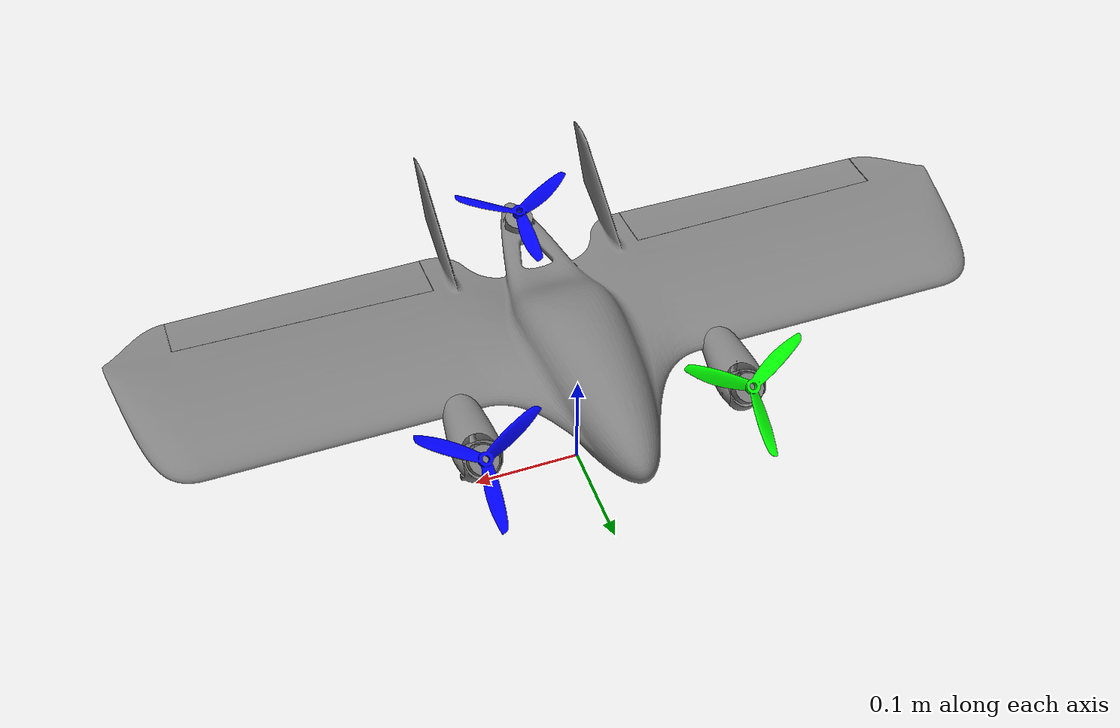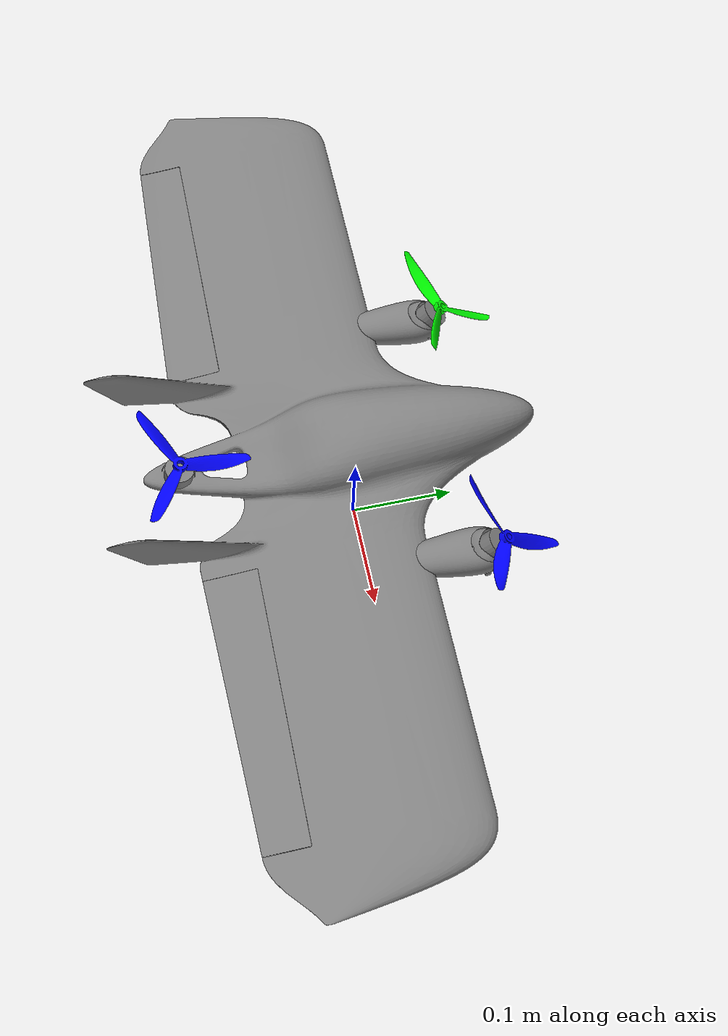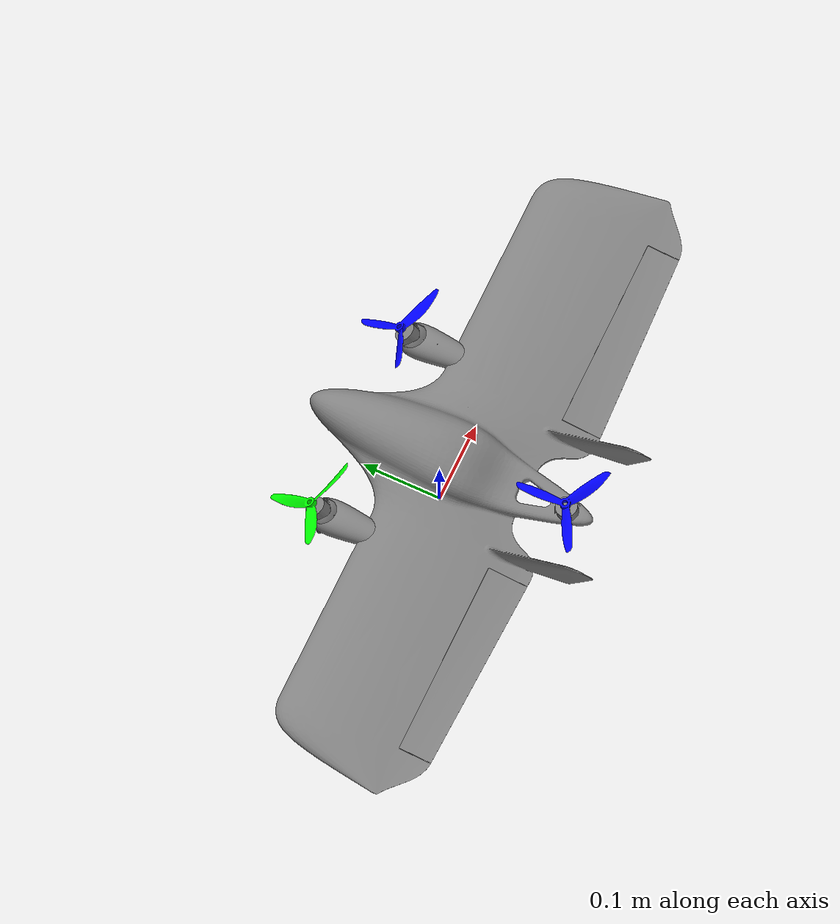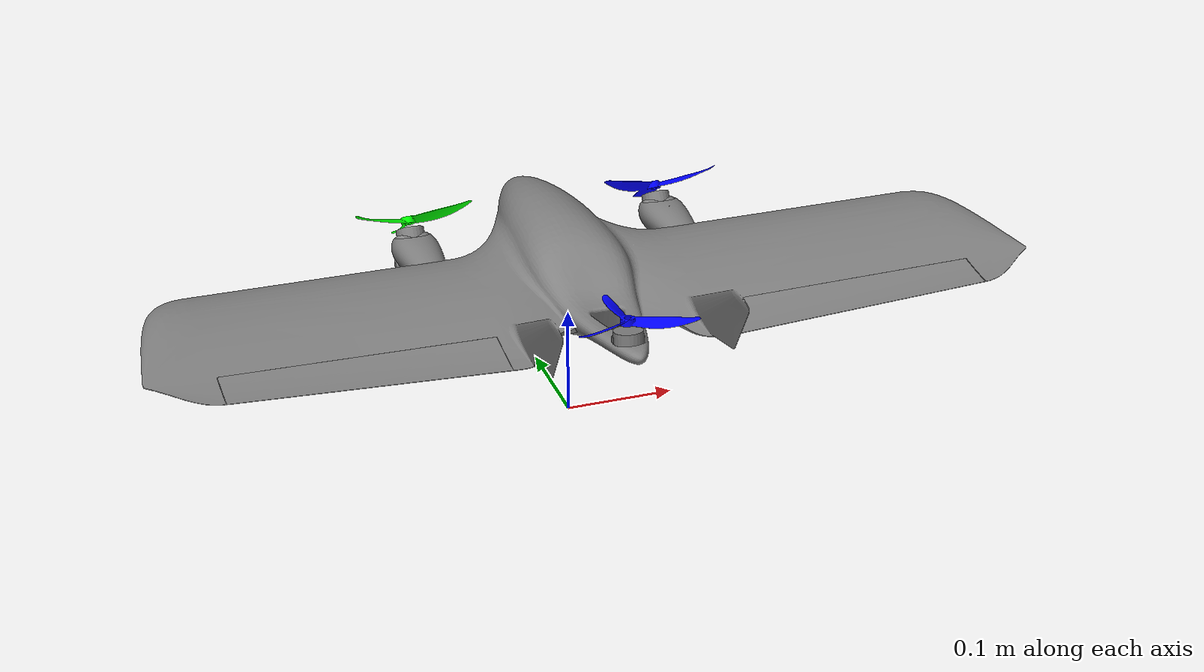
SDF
<sdf version="1.7">
 <world name="runway">
  <physics name="1ms" type="ignore">
   <max_step_size>0.001</max_step_size>
   <real_time_factor>1.0</real_time_factor>
  </physics>
  <plugin name="gz::sim::systems::Physics" filename="gz-sim-physics-system"/>
  <plugin name="gz::sim::systems::Sensors" filename="gz-sim-sensors-system">
   <render_engine>ogre2</render_engine>
  </plugin>
  <plugin name="gz::sim::systems::UserCommands" filename="gz-sim-user-commands-system"/>
  <plugin name="gz::sim::systems::SceneBroadcaster" filename="gz-sim-scene-broadcaster-system"/>
  <plugin name="gz::sim::systems::AirPressure" filename="gz-sim-air-pressure-system"/>
  <plugin name="gz::sim::systems::Altimeter" filename="gz-sim-altimeter-system"/>
  <plugin name="gz::sim::systems::Imu" filename="gz-sim-imu-system"/>
  <plugin name="gz::sim::systems::Magnetometer" filename="gz-sim-magnetometer-system"/>
  <plugin name="gz::sim::systems::NavSat" filename="gz-sim-navsat-system"/>
  <scene><ambient>1.0 1.0 1.0</ambient><background>0.8 0.8 0.8</background></scene>
  <light type="directional" name="sun">
   <pose>0 0 10 0 0 0</pose>
   <diffuse>0.8 0.8 0.8 1</diffuse>
   <specular>0.8 0.8 0.8 1</specular>
   <attenuation>
    <range>1000</range>
    <constant>0.9</constant>
    <linear>0.01</linear>
    <quadratic>0.001</quadratic>
   </attenuation>
   <direction>-0.5 0.1 -0.9</direction>
  </light>
  <spherical_coordinates>
   <latitude_deg>-35.3632621</latitude_deg>
   <longitude_deg>149.1652374</longitude_deg>
   <elevation>10.0</elevation>
   <heading_deg>0</heading_deg>
   <surface_model>EARTH_WGS84</surface_model>
  </spherical_coordinates>
  <include><pose degrees="true">0 0 0.15 0 0 90</pose><uri>model://minihawk_vtol</uri></include>
 </world>
</sdf>

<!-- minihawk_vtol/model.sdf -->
<sdf version="1.9">

  <model name="minihawk_vtol">
    <static>0</static>
    <self_collide>0</self_collide>

    <link name="base_link">
      <inertial>
        <pose>0.005 0 0 0 0 0</pose>
        <mass>1.0</mass>
        <inertia>
          <ixx>0.004166667</ixx>
          <ixy>0</ixy>
          <ixz>0</ixz>
          <iyy>0.044166667</iyy>
          <iyz>0</iyz>
          <izz>0.041666667</izz>
        </inertia>
      </inertial>
      <collision name="airframe_collision">
        <pose degrees="true">0 0 0 -180 0 0</pose>
        <geometry>
          <mesh>
            <scale>0.001 0.001 0.001</scale>
            <uri>model://minihawk_vtol/meshes/mh5_airframe.stl</uri>
          </mesh>
        </geometry>
      </collision>

      <!-- leave for debugging - FBWA horizontal takeoff -->

      <visual name="airframe_visual">
        <geometry>
          <mesh>
            <scale>0.001 0.001 0.001</scale>
            <uri>model://minihawk_vtol/meshes/mh5_airframe.dae</uri>
          </mesh>
        </geometry>
        <material>
          <ambient>0.5 0.5 0.5</ambient>
          <diffuse>0.5 0.5 0.5</diffuse>
          <specular>0.5 0.5 0.5</specular>
          <pbr>
            <metal>
              <roughness>0.5</roughness>
              <metalness>0.4</metalness>
            </metal>
          </pbr>
        </material>
      </visual>
      <visual name="nacelle_left_visual">
        <geometry>
          <mesh>
            <scale>0.001 0.001 0.001</scale>
            <uri>model://minihawk_vtol/meshes/mh5_nacelle_left.dae</uri>
          </mesh>
        </geometry>
        <material>
          <ambient>0.5 0.5 0.5</ambient>
          <diffuse>0.5 0.5 0.5</diffuse>
          <specular>0.5 0.5 0.5</specular>
          <pbr>
            <metal>
              <roughness>0.5</roughness>
              <metalness>0.4</metalness>
            </metal>
          </pbr>
        </material>
      </visual>
      <visual name="nacelle_right_visual">
        <geometry>
          <mesh>
            <scale>0.001 0.001 0.001</scale>
            <uri>model://minihawk_vtol/meshes/mh5_nacelle_right.dae</uri>
          </mesh>
        </geometry>
        <material>
          <ambient>0.5 0.5 0.5</ambient>
          <diffuse>0.5 0.5 0.5</diffuse>
          <specular>0.5 0.5 0.5</specular>
          <pbr>
            <metal>
              <roughness>0.5</roughness>
              <metalness>0.4</metalness>
            </metal>
          </pbr>
        </material>
      </visual>

      <!-- save for debugging use -->

    </link>

    <link name="elevon_left_link">
      <pose>-0.12638 0.211358 -0.00289163 0 0 0</pose>
      <inertial>
        <mass>0.1</mass>
        <inertia>
          <ixx>0.003713333</ixx>
          <ixy>0</ixy>
          <iyy>0.000104167</iyy>
          <ixz>0</ixz>
          <iyz>0</iyz>
          <izz>0.003650833</izz>
        </inertia>
      </inertial>
      <collision name="collision">
        <pose degrees="true">0 0 0 0 0 0</pose>
        <geometry>
          <mesh>
            <scale>0.001 0.001 0.001</scale>
            <uri>model://minihawk_vtol/meshes/mh5_elevon_left.dae</uri>
          </mesh>
        </geometry>
      </collision>
      <visual name="visual">
        <geometry>
          <mesh>
            <scale>0.001 0.001 0.001</scale>
            <uri>model://minihawk_vtol/meshes/mh5_elevon_left.dae</uri>
          </mesh>
        </geometry>
        <material>
          <ambient>0.5 0.5 0.5</ambient>
          <diffuse>0.5 0.5 0.5</diffuse>
          <specular>0.5 0.5 0.5</specular>
          <pbr>
            <metal>
              <roughness>0.5</roughness>
              <metalness>0.4</metalness>
            </metal>
          </pbr>
        </material>
      </visual>
    </link>
    <joint name="elevon_left_joint" type="revolute">
      <pose>0.0155 0 0 0 0 0</pose>
      <parent>base_link</parent>
      <child>elevon_left_link</child>
      <axis>
        <xyz>0 1 0</xyz>
        <limit>
          <lower>-0.523599</lower>
          <upper>0.523599</upper>
        </limit>
        <dynamics>
          <damping>0.02</damping>
        </dynamics>
      </axis>
    </joint>

    <link name="elevon_right_link">
      <pose>-0.12638 -0.211358 -0.00289163 0 0 0</pose>
      <inertial>
        <mass>0.1</mass>
        <inertia>
          <ixx>0.003713333</ixx>
          <ixy>0</ixy>
          <iyy>0.000104167</iyy>
          <ixz>0</ixz>
          <iyz>0</iyz>
          <izz>0.003650833</izz>
        </inertia>
      </inertial>
      <collision name="collision">
        <pose degrees="true">0 0 0 0 0 0</pose>
        <geometry>
          <mesh>
            <scale>0.001 0.001 0.001</scale>
            <uri>model://minihawk_vtol/meshes/mh5_elevon_right.dae</uri>
          </mesh>
        </geometry>
      </collision>
      <visual name="visual">
        <geometry>
          <mesh>
            <scale>0.001 0.001 0.001</scale>
            <uri>model://minihawk_vtol/meshes/mh5_elevon_right.dae</uri>
          </mesh>
        </geometry>
        <material>
          <ambient>0.5 0.5 0.5</ambient>
          <diffuse>0.5 0.5 0.5</diffuse>
          <specular>0.5 0.5 0.5</specular>
          <pbr>
            <metal>
              <roughness>0.5</roughness>
              <metalness>0.4</metalness>
            </metal>
          </pbr>
        </material>
      </visual>
    </link>
    <joint name="elevon_right_joint" type="revolute">
      <pose>0.0155 0 0 0 0 0</pose>
      <parent>base_link</parent>
      <child>elevon_right_link</child>
      <axis>
        <xyz>0 1 0</xyz>
        <limit>
          <lower>-0.523599</lower>
          <upper>0.523599</upper>
        </limit>
        <dynamics>
          <damping>0.02</damping>
        </dynamics>
      </axis>
    </joint>

    <link name="tilt_mount_left_link">
      <pose relative_to="base_link" degrees="true">0.091 0.119839889 -0.0087 0 -52 0</pose>
      <inertial>
        <mass>0.06</mass>
        <inertia>
          <ixx>0.0000125</ixx>
          <ixy>0</ixy>
          <ixz>0</ixz>
          <iyy>0.0000125</iyy>
          <iyz>0</iyz>
          <izz>0.00001875</izz>
        </inertia>
      </inertial>
      <collision name="collision">
        <geometry>
          <mesh>
            <scale>0.001 0.001 0.001</scale>
            <uri>model://minihawk_vtol/meshes/mh5_tilt_mount_left.dae</uri>
          </mesh>
        </geometry>
      </collision>
      <visual name="visual">
        <geometry>
          <mesh>
            <scale>0.001 0.001 0.001</scale>
            <uri>model://minihawk_vtol/meshes/mh5_tilt_mount_left.dae</uri>
          </mesh>
        </geometry>
        <material>
          <ambient>0.5 0.5 0.5</ambient>
          <diffuse>0.5 0.5 0.5</diffuse>
          <specular>0.5 0.5 0.5</specular>
          <pbr>
            <metal>
              <roughness>0.5</roughness>
              <metalness>0.4</metalness>
            </metal>
          </pbr>
        </material>
      </visual>
    </link>
    <joint name="tilt_mount_left_joint" type="revolute">
      <pose degrees="true">0 0 0.005 0 0 0</pose>
      <parent>base_link</parent>
      <child>tilt_mount_left_link</child>
      <axis>
        <xyz>0 1 0</xyz>
        <limit>
          <lower>-0.907571211</lower>
          <upper>0.907571211</upper>
        </limit>
        <dynamics>
          <damping>0.02</damping>
        </dynamics>
      </axis>
    </joint>

    <link name="tilt_mount_right_link">
      <pose relative_to="base_link" degrees="true">0.091 -0.119839889 -0.0087 0 -52 0</pose>
      <inertial>
        <mass>0.06</mass>
        <inertia>
          <ixx>0.0000125</ixx>
          <ixy>0</ixy>
          <ixz>0</ixz>
          <iyy>0.0000125</iyy>
          <iyz>0</iyz>
          <izz>0.00001875</izz>
        </inertia>
      </inertial>
      <collision name="collision">
        <geometry>
          <mesh>
            <scale>0.001 0.001 0.001</scale>
            <uri>model://minihawk_vtol/meshes/mh5_tilt_mount_right.dae</uri>
          </mesh>
        </geometry>
      </collision>
      <visual name="visual">
        <geometry>
          <mesh>
            <scale>0.001 0.001 0.001</scale>
            <uri>model://minihawk_vtol/meshes/mh5_tilt_mount_right.dae</uri>
          </mesh>
        </geometry>
        <material>
          <ambient>0.5 0.5 0.5</ambient>
          <diffuse>0.5 0.5 0.5</diffuse>
          <specular>0.5 0.5 0.5</specular>
          <pbr>
            <metal>
              <roughness>0.5</roughness>
              <metalness>0.4</metalness>
            </metal>
          </pbr>
        </material>
      </visual>
    </link>
    <joint name="tilt_mount_right_joint" type="revolute">
      <pose degrees="true">0 0 0.005 0 0 0</pose>
      <parent>base_link</parent>
      <child>tilt_mount_right_link</child>
      <axis>
        <xyz>0 1 0</xyz>
        <limit>
          <lower>-0.907571211</lower>
          <upper>0.907571211</upper>
        </limit>
        <dynamics>
          <damping>0.02</damping>
        </dynamics>
      </axis>
    </joint>

    <link name="motor_left_link">
      <pose relative_to="motor_left_joint">0 0 0.011 0 0 0</pose>
      <inertial>
        <pose>0 0 0 0 0 0</pose>
        <mass>0.025</mass>
        <inertia>
          <ixx>9.75e-06</ixx>
          <ixy>0</ixy>
          <ixz>0</ixz>
          <iyy>0.000166704</iyy>
          <iyz>0</iyz>
          <izz>0.000167604</izz>
        </inertia>
      </inertial>
      <collision name="prop_collision">
        <pose>0 0 0.015 0 0 0</pose>
        <geometry>
          <cylinder>
            <radius>0.0635</radius>
            <length>0.005</length>
          </cylinder>
        </geometry>
      </collision>
      <visual name="motor_visual">
        <geometry>
          <cylinder>
            <radius>0.013</radius>
            <length>0.013</length>
          </cylinder>
        </geometry>
        <material>
          <ambient>0.5 0.5 0.5</ambient>
          <diffuse>0.5 0.5 0.5</diffuse>
          <specular>0.5 0.5 0.5</specular>
          <pbr>
            <metal>
              <roughness>0.5</roughness>
              <metalness>0.4</metalness>
            </metal>
          </pbr>
        </material>
      </visual>
      <visual name="prop_visual">
        <pose>0 0 0.015 0 0 0</pose>
        <geometry>
          <mesh>
            <scale>0.001 0.001 0.001</scale>
            <uri>model://minihawk_vtol/meshes/prop_triblade_5045_cw.dae</uri>
          </mesh>
        </geometry>
        <material>
          <ambient>0 1 0</ambient>
          <diffuse>0 1 0</diffuse>
          <specular>0.5 0.5 0.5</specular>
          <pbr>
            <metal>
              <roughness>0.5</roughness>
              <metalness>0.4</metalness>
            </metal>
          </pbr>
        </material>
      </visual>

      <!-- cp visuals -->

      <!-- forward vector visuals -->

    </link>
    <joint name="motor_left_joint" type="revolute">
      <pose relative_to="tilt_mount_left_joint" degrees="true">0 0 -0.005 0 90 0</pose>
      <parent>tilt_mount_left_link</parent>
      <child>motor_left_link</child>
      <axis>
        <xyz>0 0 1</xyz>
        <limit>
          <lower>-1e16</lower>
          <upper>1e16</upper>
        </limit>
        <dynamics>
          <damping>0.002</damping>
        </dynamics>
        <use_parent_model_frame>1</use_parent_model_frame>
      </axis>
    </joint>

    <link name="motor_right_link">
      <pose relative_to="motor_right_joint">0 0 0.011 0 0 0</pose>
      <inertial>
        <pose>0 0 0 0 0 0</pose>
        <mass>0.025</mass>
        <inertia>
          <ixx>9.75e-06</ixx>
          <ixy>0</ixy>
          <ixz>0</ixz>
          <iyy>0.000166704</iyy>
          <iyz>0</iyz>
          <izz>0.000167604</izz>
        </inertia>
      </inertial>
      <collision name="prop_collision">
        <pose>0 0 0.015 0 0 0</pose>
        <geometry>
          <cylinder>
            <radius>0.0635</radius>
            <length>0.005</length>
          </cylinder>
        </geometry>
      </collision>
      <visual name="motor_visual">
        <geometry>
          <cylinder>
            <radius>0.013</radius>
            <length>0.013</length>
          </cylinder>
        </geometry>
        <material>
          <ambient>0.5 0.5 0.5</ambient>
          <diffuse>0.5 0.5 0.5</diffuse>
          <specular>0.5 0.5 0.5</specular>
          <pbr>
            <metal>
              <roughness>0.5</roughness>
              <metalness>0.4</metalness>
            </metal>
          </pbr>
        </material>
      </visual>
      <visual name="prop_visual">
        <pose>0 0 0.015 0 0 0</pose>
        <geometry>
          <mesh>
            <scale>0.001 0.001 0.001</scale>
            <uri>model://minihawk_vtol/meshes/prop_triblade_5045_ccw.dae</uri>
          </mesh>
        </geometry>
        <material>
          <ambient>0 0 1</ambient>
          <diffuse>0 0 1</diffuse>
          <specular>0.5 0.5 0.5</specular>
          <pbr>
            <metal>
              <roughness>0.5</roughness>
              <metalness>0.4</metalness>
            </metal>
          </pbr>
        </material>
      </visual>

      <!-- cp visuals -->

      <!-- forward vector visuals -->

    </link>
    <joint name="motor_right_joint" type="revolute">
      <pose relative_to="tilt_mount_right_joint" degrees="true">0 0 -0.005 0 90 0</pose>
      <parent>tilt_mount_right_link</parent>
      <child>motor_right_link</child>
      <axis>
        <xyz>0 0 1</xyz>
        <limit>
          <lower>-1e16</lower>
          <upper>1e16</upper>
        </limit>
        <dynamics>
          <damping>0.002</damping>
        </dynamics>
      </axis>
    </joint>

    <link name="motor_tail_link">
      <pose relative_to="motor_tail_joint">0 0 0.009 0 0 0</pose>
      <inertial>
        <pose>0 0 0 0 0 0</pose>
        <mass>0.025</mass>
        <inertia>
          <ixx>9.75e-06</ixx>
          <ixy>0</ixy>
          <ixz>0</ixz>
          <iyy>0.000166704</iyy>
          <iyz>0</iyz>
          <izz>0.000167604</izz>
        </inertia>
      </inertial>
      <collision name="prop_collision">
        <pose>0 0 0.015 0 0 0</pose>
        <geometry>
          <cylinder>
            <radius>0.0635</radius>
            <length>0.005</length>
          </cylinder>
        </geometry>
      </collision>
      <visual name="motor_visual">
        <geometry>
          <cylinder>
            <radius>0.013</radius>
            <length>0.013</length>
          </cylinder>
        </geometry>
        <material>
          <ambient>0.5 0.5 0.5</ambient>
          <diffuse>0.5 0.5 0.5</diffuse>
          <specular>0.5 0.5 0.5</specular>
          <pbr>
            <metal>
              <roughness>0.5</roughness>
              <metalness>0.4</metalness>
            </metal>
          </pbr>
        </material>
      </visual>
      <visual name="prop_visual">
        <pose>0 0 0.015 0 0 0</pose>
        <geometry>
          <mesh>
            <scale>0.001 0.001 0.001</scale>
            <uri>model://minihawk_vtol/meshes/prop_triblade_5045_ccw.dae</uri>
          </mesh>
        </geometry>
        <material>
          <ambient>0 0 1</ambient>
          <diffuse>0 0 1</diffuse>
          <specular>0.5 0.5 0.5</specular>
          <pbr>
            <metal>
              <roughness>0.5</roughness>
              <metalness>0.4</metalness>
            </metal>
          </pbr>
        </material>
      </visual>

      <!-- cp visuals -->

      <!-- forward vector visuals -->

    </link>
    <joint name="motor_tail_joint" type="revolute">
      <pose relative_to="base_link" degrees="true">-0.164 0 0 0 10 0</pose>
      <parent>base_link</parent>
      <child>motor_tail_link</child>
      <axis>
        <xyz>0 0 1</xyz>
        <limit>
          <lower>-1e16</lower>
          <upper>1e16</upper>
        </limit>
        <dynamics>
          <damping>0.002</damping>
        </dynamics>
      </axis>
    </joint>

    <!-- sensors -->
    <link name="imu_link">
      <inertial>
        <pose>0 0 0 0 0 0</pose>
        <mass>0.15</mass>
        <inertia>
          <ixx>0.00002</ixx>
          <ixy>0</ixy>
          <ixz>0</ixz>
          <iyy>0.00002</iyy>
          <iyz>0</iyz>
          <izz>0.00002</izz>
        </inertia>
      </inertial>
      <sensor name="imu_sensor" type="imu">
        <pose degrees="true">0 0 0 180 0 0</pose>
        <always_on>1</always_on>
        <update_rate>1000.0</update_rate>
      </sensor>
    </link>
    <joint name="imu_joint" type="revolute">
      <child>imu_link</child>
      <parent>base_link</parent>
      <axis>
        <xyz>0 0 1</xyz>
        <limit>
          <lower>0</lower>
          <upper>0</upper>
        </limit>
        <dynamics>
          <damping>1.0</damping>
        </dynamics>
      </axis>
    </joint>

    <!-- plugins -->
    <plugin name="gz::sim::systems::JointStatePublisher"
      filename="gz-sim-joint-state-publisher-system">
    </plugin>

    <plugin name="gz::sim::systems::JointPositionController"
      filename="gz-sim-joint-position-controller-system">
      <joint_name>elevon_left_joint</joint_name>
      <topic>/elevon_left/cmd_pos</topic>
      <p_gain>3</p_gain>
      <i_gain>0.05</i_gain>
      <d_gain>0.2</d_gain>
      <i_max>1</i_max>
      <i_min>-1</i_min>
      <cmd_max>5</cmd_max>
      <cmd_min>-5</cmd_min>
    </plugin>

    <plugin name="gz::sim::systems::JointPositionController"
      filename="gz-sim-joint-position-controller-system">
      <joint_name>elevon_right_joint</joint_name>
      <topic>/elevon_right/cmd_pos</topic>
      <initial_position>0</initial_position>
      <p_gain>3</p_gain>
      <i_gain>0.05</i_gain>
      <d_gain>0.2</d_gain>
      <i_max>1</i_max>
      <i_min>-1</i_min>
      <cmd_max>5</cmd_max>
      <cmd_min>-5</cmd_min>
    </plugin>

    <!-- use direct control in AP plugin to isolate source of sim instability -->

    <!-- tri-blade props per spec -->

    <!-- prop_right (ccw) lift-drag (ArduPilot motor 1) -->
    <plugin name="gz::sim::systems::LiftDrag"
      filename="gz-sim-lift-drag-system">
      <a0>0.3</a0>
      <alpha_stall>1.4</alpha_stall>
      <cla>4.2500</cla>
      <cda>0.10</cda>
      <cma>0.00</cma>
      <cla_stall>-0.025</cla_stall>
      <cda_stall>0.0</cda_stall>
      <cma_stall>0.0</cma_stall>
      <area>0.0015</area>
      <air_density>1.2041</air_density>
      <cp>0.063 0 0</cp>
      <forward>0 1 0</forward>
      <upward>0 0 1</upward>
      <link_name>motor_right_link</link_name>
    </plugin>
    <plugin name="gz::sim::systems::LiftDrag"
      filename="gz-sim-lift-drag-system">
      <a0>0.3</a0>
      <alpha_stall>1.4</alpha_stall>
      <cla>4.2500</cla>
      <cda>0.10</cda>
      <cma>0.00</cma>
      <cla_stall>-0.025</cla_stall>
      <cda_stall>0.0</cda_stall>
      <cma_stall>0.0</cma_stall>
      <area>0.0015</area>
      <air_density>1.2041</air_density>
      <cp>-0.0315 0.0545596 0</cp>
      <forward>-0.866025404 -0.5 0</forward>
      <upward>0 0 1</upward>
      <link_name>motor_right_link</link_name>
    </plugin>
    <plugin name="gz::sim::systems::LiftDrag"
      filename="gz-sim-lift-drag-system">
      <a0>0.3</a0>
      <alpha_stall>1.4</alpha_stall>
      <cla>4.2500</cla>
      <cda>0.10</cda>
      <cma>0.00</cma>
      <cla_stall>-0.025</cla_stall>
      <cda_stall>0.0</cda_stall>
      <cma_stall>0.0</cma_stall>
      <area>0.0015</area>
      <air_density>1.2041</air_density>
      <cp>-0.0315 -0.0545596 0</cp>
      <forward>0.866025404 -0.5 0</forward>
      <upward>0 0 1</upward>
      <link_name>motor_right_link</link_name>
    </plugin>

    <!-- prop_left (cw) lift-drag (ArduPilot motor 2) -->
    <plugin name="gz::sim::systems::LiftDrag"
      filename="gz-sim-lift-drag-system">
      <a0>0.3</a0>
      <alpha_stall>1.4</alpha_stall>
      <cla>4.2500</cla>
      <cda>0.10</cda>
      <cma>0.00</cma>
      <cla_stall>-0.025</cla_stall>
      <cda_stall>0.0</cda_stall>
      <cma_stall>0.0</cma_stall>
      <area>0.0015</area>
      <air_density>1.2041</air_density>
      <cp>0.063 0 0</cp>
      <forward>0 -1 0</forward>
      <upward>0 0 1</upward>
      <link_name>motor_left_link</link_name>
    </plugin>
    <plugin name="gz::sim::systems::LiftDrag"
      filename="gz-sim-lift-drag-system">
      <a0>0.3</a0>
      <alpha_stall>1.4</alpha_stall>
      <cla>4.2500</cla>
      <cda>0.10</cda>
      <cma>0.00</cma>
      <cla_stall>-0.025</cla_stall>
      <cda_stall>0.0</cda_stall>
      <cma_stall>0.0</cma_stall>
      <area>0.0015</area>
      <air_density>1.2041</air_density>
      <cp>-0.0315 0.0545596 0</cp>
      <forward>0.866025404 0.5 0</forward>
      <upward>0 0 1</upward>
      <link_name>motor_left_link</link_name>
    </plugin>
    <plugin name="gz::sim::systems::LiftDrag"
      filename="gz-sim-lift-drag-system">
      <a0>0.3</a0>
      <alpha_stall>1.4</alpha_stall>
      <cla>4.2500</cla>
      <cda>0.10</cda>
      <cma>0.00</cma>
      <cla_stall>-0.025</cla_stall>
      <cda_stall>0.0</cda_stall>
      <cma_stall>0.0</cma_stall>
      <area>0.0015</area>
      <air_density>1.2041</air_density>
      <cp>-0.0315 -0.0545596 0</cp>
      <forward>-0.866025404 0.5 0</forward>
      <upward>0 0 1</upward>
      <link_name>motor_left_link</link_name>
    </plugin>

    <!-- prop_tail (ccw) lift-drag (ArduPilot motor 4) -->
    <plugin name="gz::sim::systems::LiftDrag"
      filename="gz-sim-lift-drag-system">
      <a0>0.3</a0>
      <alpha_stall>1.4</alpha_stall>
      <cla>4.2500</cla>
      <cda>0.10</cda>
      <cma>0.00</cma>
      <cla_stall>-0.025</cla_stall>
      <cda_stall>0.0</cda_stall>
      <cma_stall>0.0</cma_stall>
      <area>0.0015</area>
      <air_density>1.2041</air_density>
      <cp>0.063 0 0</cp>
      <forward>0 1 0</forward>
      <upward>0 0 1</upward>
      <link_name>motor_tail_link</link_name>
    </plugin>
    <plugin name="gz::sim::systems::LiftDrag"
      filename="gz-sim-lift-drag-system">
      <a0>0.3</a0>
      <alpha_stall>1.4</alpha_stall>
      <cla>4.2500</cla>
      <cda>0.10</cda>
      <cma>0.00</cma>
      <cla_stall>-0.025</cla_stall>
      <cda_stall>0.0</cda_stall>
      <cma_stall>0.0</cma_stall>
      <area>0.0015</area>
      <air_density>1.2041</air_density>
      <cp>-0.0315 0.0545596 0</cp>
      <forward>-0.866025404 -0.5 0</forward>
      <upward>0 0 1</upward>
      <link_name>motor_tail_link</link_name>
    </plugin>
    <plugin name="gz::sim::systems::LiftDrag"
      filename="gz-sim-lift-drag-system">
      <a0>0.3</a0>
      <alpha_stall>1.4</alpha_stall>
      <cla>4.2500</cla>
      <cda>0.10</cda>
      <cma>0.00</cma>
      <cla_stall>-0.025</cla_stall>
      <cda_stall>0.0</cda_stall>
      <cma_stall>0.0</cma_stall>
      <area>0.0015</area>
      <air_density>1.2041</air_density>
      <cp>-0.0315 -0.0545596 0</cp>
      <forward>0.866025404 -0.5 0</forward>
      <upward>0 0 1</upward>
      <link_name>motor_tail_link</link_name>
    </plugin>

    <!-- bi-blade props used in skycat_tvbs model -->

    <!-- prop_right (ccw) lift-drag (ArduPilot motor 1) -->

    <!-- prop_left (cc) lift-drag (ArduPilot motor 2) -->

    <!-- prop_tail (ccw) lift-drag (ArduPilot motor 4) -->

    <!-- wing lift-drag -->
    <plugin name="gz::sim::systems::LiftDrag"
      filename="gz-sim-lift-drag-system">
      <a0>0.13</a0>
      <cla>3.7</cla>
      <cda>0.06417112299</cda>
      <cma>-1.8</cma>
      <alpha_stall>0.3391428111</alpha_stall>
      <cla_stall>-3.85</cla_stall>
      <cda_stall>-0.9233984055</cda_stall>
      <cma_stall>0</cma_stall>
      <cp>0 0 -0.00289163</cp>
      <area>0.156</area>
      <air_density>1.2041</air_density>
      <forward>1 0 0</forward>
      <upward>0 0 1</upward>
      <link_name>base_link</link_name>
    </plugin>
    <!-- elevon_left lift-drag -->
    <plugin name="gz::sim::systems::LiftDrag"
      filename="gz-sim-lift-drag-system">
      <a0>0.15</a0>
      <cla>6.8</cla>
      <cda>0.06417112299</cda>
      <cma>-1.8</cma>
      <alpha_stall>0.6391428111</alpha_stall>
      <cla_stall>-3.85</cla_stall>
      <cda_stall>-0.9233984055</cda_stall>
      <cma_stall>0</cma_stall>
      <cp>-0.12638 0.211358 -0.00289163</cp>
      <area>0.012</area>
      <air_density>1.2041</air_density>
      <forward>1 0 0</forward>
      <upward>0 0 1</upward>
      <link_name>base_link</link_name>
      <control_joint_name>elevon_left_joint</control_joint_name>
      <control_joint_rad_to_cl>-5.0</control_joint_rad_to_cl>
    </plugin>
    <!-- elevon_right lift-drag -->
    <plugin name="gz::sim::systems::LiftDrag"
      filename="gz-sim-lift-drag-system">
      <a0>0.15</a0>
      <cla>6.8</cla>
      <cda>0.06417112299</cda>
      <cma>-1.8</cma>
      <alpha_stall>0.6391428111</alpha_stall>
      <cla_stall>-3.85</cla_stall>
      <cda_stall>-0.9233984055</cda_stall>
      <cma_stall>0</cma_stall>
      <cp>-0.12638 -0.211358 -0.00289163</cp>
      <area>0.012</area>
      <air_density>1.2041</air_density>
      <forward>1 0 0</forward>
      <upward>0 0 1</upward>
      <link_name>base_link</link_name>
      <control_joint_name>elevon_right_joint</control_joint_name>
      <control_joint_rad_to_cl>-5.0</control_joint_rad_to_cl>
    </plugin>
    <!-- vstab_left lift-drag -->
    <plugin name="gz::sim::systems::LiftDrag"
      filename="gz-sim-lift-drag-system">
      <a0>0.0</a0>
      <cla>4.752798721</cla>
      <cda>0.6417112299</cda>
      <cma>-1.8</cma>
      <alpha_stall>0.3391428111</alpha_stall>
      <cla_stall>-3.85</cla_stall>
      <cda_stall>-0.9233984055</cda_stall>
      <cma_stall>0</cma_stall>
      <cp>-0.18 0.08 0.032</cp>
      <area>0.005</area>
      <air_density>1.2041</air_density>
      <forward>1 0 0</forward>
      <upward>0 1 0</upward>
      <link_name>base_link</link_name>
    </plugin>
    <!-- vstab_right lift-drag -->
    <plugin name="gz::sim::systems::LiftDrag"
      filename="gz-sim-lift-drag-system">
      <a0>0.0</a0>
      <cla>4.752798721</cla>
      <cda>0.6417112299</cda>
      <cma>-1.8</cma>
      <alpha_stall>0.3391428111</alpha_stall>
      <cla_stall>-3.85</cla_stall>
      <cda_stall>-0.9233984055</cda_stall>
      <cma_stall>0</cma_stall>
      <cp>-0.18 -0.08 0.032</cp>
      <area>0.005</area>
      <air_density>1.2041</air_density>
      <forward>1 0 0</forward>
      <upward>0 -1 0</upward>
      <link_name>base_link</link_name>
    </plugin>

    <plugin name="gz::sim::systems::ApplyJointForce"
      filename="gz-sim-apply-joint-force-system">
      <joint_name>elevon_left_joint</joint_name>
    </plugin>
    <plugin name="gz::sim::systems::ApplyJointForce"
      filename="gz-sim-apply-joint-force-system">
      <joint_name>elevon_right_joint</joint_name>
    </plugin>
    <plugin name="gz::sim::systems::ApplyJointForce"
      filename="gz-sim-apply-joint-force-system">
      <joint_name>tilt_mount_left_joint</joint_name>
    </plugin>
    <plugin name="gz::sim::systems::ApplyJointForce"
      filename="gz-sim-apply-joint-force-system">
      <joint_name>tilt_mount_right_joint</joint_name>
    </plugin>
    <plugin name="gz::sim::systems::ApplyJointForce"
      filename="gz-sim-apply-joint-force-system">
      <joint_name>motor_left_joint</joint_name>
    </plugin>
    <plugin name="gz::sim::systems::ApplyJointForce"
      filename="gz-sim-apply-joint-force-system">
      <joint_name>motor_right_joint</joint_name>
    </plugin>

    <plugin name="ArduPilotPlugin"
      filename="ArduPilotPlugin">
      <!-- Connection -->
      <fdm_addr>127.0.0.1</fdm_addr>
      <fdm_port_in>9002</fdm_port_in>
      <connectionTimeoutMaxCount>5</connectionTimeoutMaxCount>
      <lock_step>1</lock_step>

      <!-- Transforms -->
      <modelXYZToAirplaneXForwardZDown degrees="true">0 0 0 180 0 0</modelXYZToAirplaneXForwardZDown>
      <gazeboXYZToNED degrees="true">0 0 0 180 0 90</gazeboXYZToNED>

      <!-- Sensors -->
      <imuName>imu_link::imu_sensor</imuName>

      <!--
          SERVO1_FUNCTION   77 (Elevon Left)
       -->
      <control channel="0">
        <jointName>elevon_left_joint</jointName>
        <multiplier>1.047</multiplier>
        <offset>-0.5</offset>
        <servo_min>1000</servo_min>
        <servo_max>2000</servo_max>

        <useForce>1</useForce>
        <type>POSITION</type>
        <p_gain>5.0</p_gain>
        <i_gain>0</i_gain>
        <d_gain>0</d_gain>
        <i_max>-1</i_max>
        <i_min>0</i_min>
        <cmd_max>2.5</cmd_max>
        <cmd_min>-2.5</cmd_min>

      </control>

      <!--
          SERVO2_FUNCTION   78 (Elevon Right)
       -->
      <control channel="1">
        <jointName>elevon_right_joint</jointName>
        <multiplier>1.047</multiplier>
        <offset>-0.5</offset>
        <servo_min>1000</servo_min>
        <servo_max>2000</servo_max>

        <useForce>1</useForce>
        <type>POSITION</type>
        <p_gain>5.0</p_gain>
        <i_gain>0</i_gain>
        <d_gain>0</d_gain>
        <i_max>-1</i_max>
        <i_min>0</i_min>
        <cmd_max>2.5</cmd_max>
        <cmd_min>-2.5</cmd_min>

      </control>

      <!--
          SERVO3_FUNCTION   75 (Left Motor Tilt)

          Tilt is -/+52 deg (0.907571211 rad)
       -->
      <control channel="2">
        <jointName>tilt_mount_left_joint</jointName>
        <multiplier>1.815142422</multiplier>
        <offset>-0.5</offset>
        <servo_min>1000</servo_min>
        <servo_max>2000</servo_max>

        <useForce>1</useForce>
        <type>POSITION</type>
        <p_gain>10.0</p_gain>
        <i_gain>0</i_gain>
        <d_gain>0</d_gain>
        <i_max>-1</i_max>
        <i_min>0</i_min>
        <cmd_max>2.5</cmd_max>
        <cmd_min>-2.5</cmd_min>

      </control>

      <!--
          SERVO4_FUNCTION   76 (Right Motor Tilt)

          Tilt is -/+52 deg deg (0.907571211 rad)
       -->
      <control channel="3">
        <jointName>tilt_mount_right_joint</jointName>
        <multiplier>1.815142422</multiplier>
        <offset>-0.5</offset>
        <servo_min>1000</servo_min>
        <servo_max>2000</servo_max>

        <useForce>1</useForce>
        <type>POSITION</type>
        <p_gain>10.0</p_gain>
        <i_gain>0</i_gain>
        <d_gain>0</d_gain>
        <i_max>-1</i_max>
        <i_min>0</i_min>
        <cmd_max>2.5</cmd_max>
        <cmd_min>-2.5</cmd_min>

      </control>

      <!--
          SERVO5_FUNCTION   33 (Right Motor CCW)
       -->
      <control channel="4">
        <jointName>motor_right_joint</jointName>
        <multiplier>1500</multiplier>
        <offset>0</offset>
        <servo_min>1000</servo_min>
        <servo_max>2000</servo_max>

        <useForce>1</useForce>
        <type>VELOCITY</type>
        <p_gain>0.20</p_gain>
        <i_gain>0</i_gain>
        <d_gain>0</d_gain>
        <i_max>-1</i_max>
        <i_min>0</i_min>
        <cmd_max>2.5</cmd_max>
        <cmd_min>-2.5</cmd_min>

      </control>

      <!--
          SERVO6_FUNCTION   34 (Left Motor CW)
       -->
      <control channel="5">
        <jointName>motor_left_joint</jointName>
        <multiplier>-1500</multiplier>
        <offset>0</offset>
        <servo_min>1000</servo_min>
        <servo_max>2000</servo_max>

        <useForce>1</useForce>
        <type>VELOCITY</type>
        <p_gain>0.20</p_gain>
        <i_gain>0</i_gain>
        <d_gain>0</d_gain>
        <i_max>-1</i_max>
        <i_min>0</i_min>
        <cmd_max>2.5</cmd_max>
        <cmd_min>-2.5</cmd_min>

      </control>

      <!--
          SERVO7_FUNCTION   0 (Unused)
       -->

      <!--
          SERVO8_FUNCTION   36 (Tail Motor CCW)
       -->
      <control channel="7">
        <jointName>motor_tail_joint</jointName>
        <multiplier>1500</multiplier>
        <offset>0</offset>
        <servo_min>1000</servo_min>
        <servo_max>2000</servo_max>

        <useForce>1</useForce>
        <type>VELOCITY</type>
        <p_gain>0.20</p_gain>
        <i_gain>0</i_gain>
        <d_gain>0</d_gain>
        <i_max>-1</i_max>
        <i_min>0</i_min>
        <cmd_max>2.5</cmd_max>
        <cmd_min>-2.5</cmd_min>

      </control>

    </plugin>

  </model>
</sdf>
